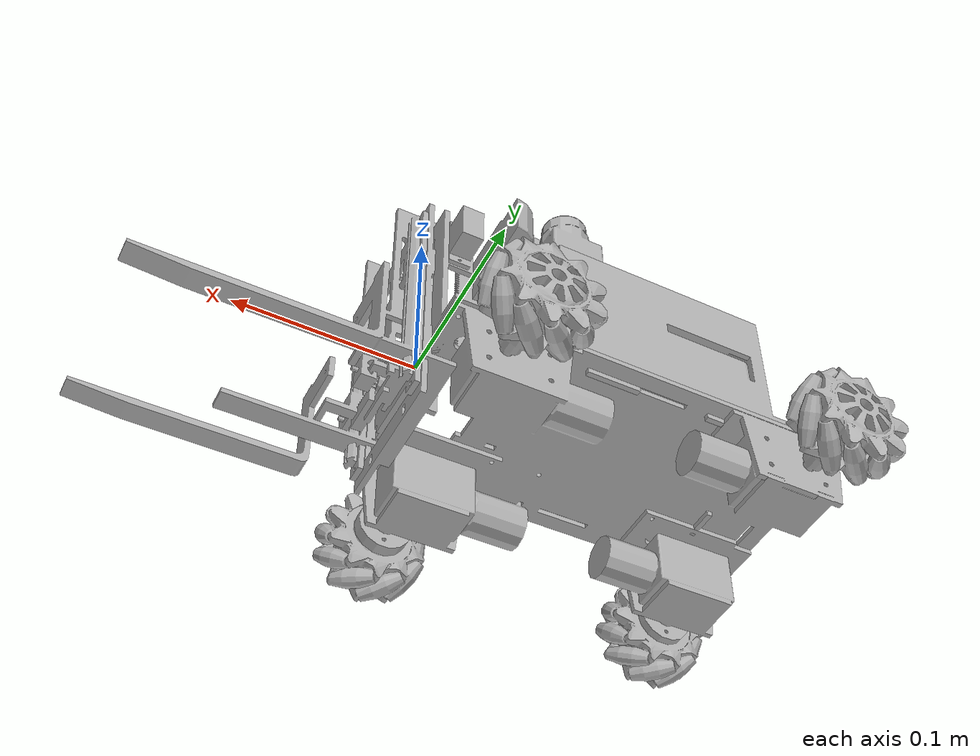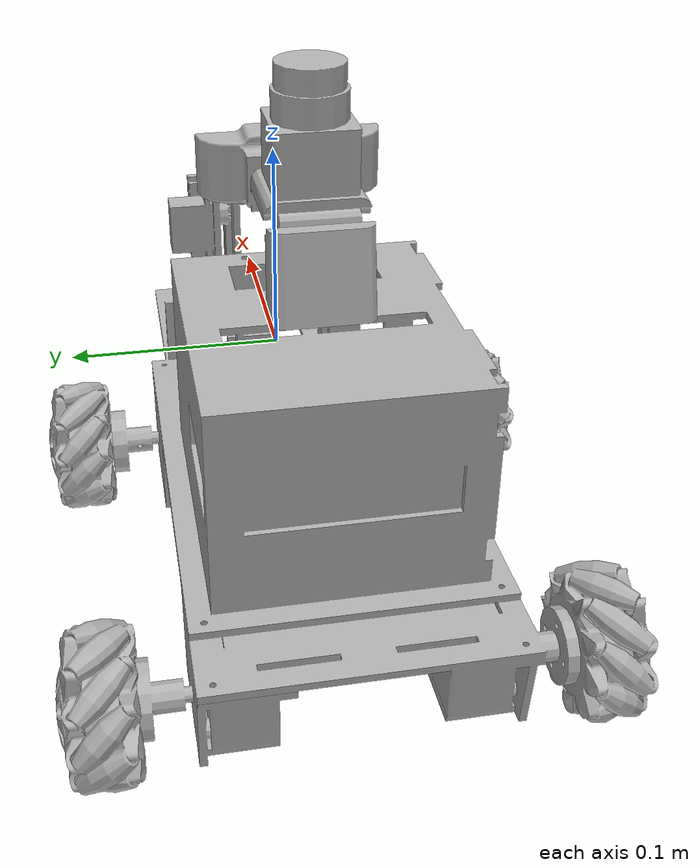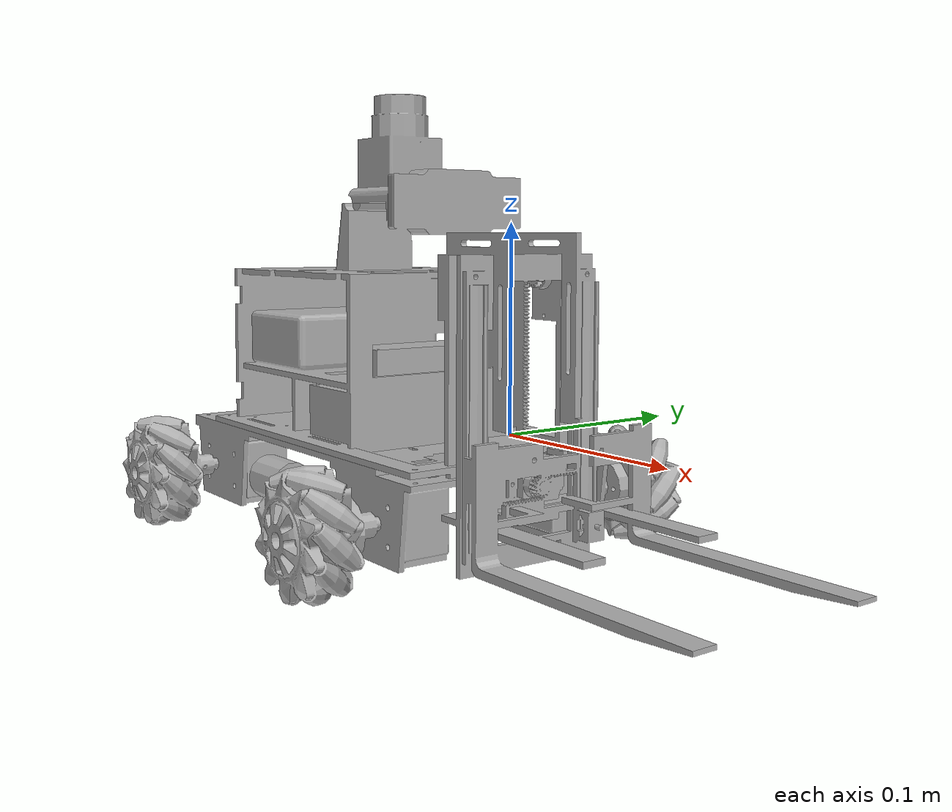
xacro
<?xml version="1.0" ?>
<robot name="omni" xmlns:xacro="http://www.ros.org/wiki/xacro">

<xacro:include filename="$(find omni_description)/urdf/materials.xacro" />
<xacro:include filename="$(find omni_description)/urdf/omni.trans" />
<xacro:include filename="$(find omni_description)/urdf/omni.gazebo" />

<link name="base_link">
  <inertial>
    <origin xyz="-0.09773323828228454 0.0007226627833107346 0.022411911514028184" rpy="0 0 0"/>
    <mass value="4.252201155500529"/>
    <inertia ixx="0.008087" iyy="0.02462" izz="0.024706" ixy="0.000186" iyz="-0.000351" ixz="0.003179"/>
  </inertial>
  <visual>
    <origin xyz="0 0 0" rpy="0 0 0"/>
    <geometry>
      <mesh filename="package://omni_description/meshes/base_link.stl"/>
    </geometry>
    <material name="silver"/>
  </visual>
  <collision>
    <origin xyz="0 0 0" rpy="0 0 0"/>
    <geometry>
      <mesh filename="package://omni_description/meshes/base_link.stl"/>
    </geometry>
  </collision>
</link>

<link name="hokuyo_1">
  <inertial>
    <origin xyz="2.336606508279715e-08 3.8184287998466193e-07 0.020883564035625468" rpy="0 0 0"/>
    <mass value="0.3480480361849981"/>
    <inertia ixx="8.4e-05" iyy="8.4e-05" izz="5.4e-05" ixy="0.0" iyz="0.0" ixz="-0.0"/>
  </inertial>
  <visual>
    <origin xyz="0.093332 7.5e-05 -0.119283" rpy="0 0 0"/>
    <geometry>
      <mesh filename="package://omni_description/meshes/hokuyo_1.stl"/>
    </geometry>
    <material name="silver"/>
  </visual>
  <collision>
    <origin xyz="0.093332 7.5e-05 -0.119283" rpy="0 0 0"/>
    <geometry>
      <mesh filename="package://omni_description/meshes/hokuyo_1.stl"/>
    </geometry>
  </collision>
</link>

<link name="camera_1">
  <inertial>
    <origin xyz="0.0447948568203564 3.841191200996773e-07 0.030958820986335858" rpy="0 0 0"/>
    <mass value="0.5924464749290492"/>
    <inertia ixx="0.000234" iyy="0.000644" izz="0.000711" ixy="-0.0" iyz="-0.0" ixz="-0.000116"/>
  </inertial>
  <visual>
    <origin xyz="0.120832 7.5e-05 -0.075283" rpy="0 0 0"/>
    <geometry>
      <mesh filename="package://omni_description/meshes/camera_1.stl"/>
    </geometry>
    <material name="silver"/>
  </visual>
  <collision>
    <origin xyz="0.120832 7.5e-05 -0.075283" rpy="0 0 0"/>
    <geometry>
      <mesh filename="package://omni_description/meshes/camera_1.stl"/>
    </geometry>
  </collision>
</link>

<link name="base_footprint_1">
  <inertial>
    <origin xyz="0.011015526351477817 -1.2132936514437287e-05 -0.02025971413965761" rpy="0 0 0"/>
    <mass value="2.8579441590973205"/>
    <inertia ixx="0.007001" iyy="0.015233" izz="0.021212" ixy="-6e-06" iyz="5e-06" ixz="0.00016"/>
  </inertial>
  <visual>
    <origin xyz="0.120832 7.5e-05 0.012717" rpy="0 0 0"/>
    <geometry>
      <mesh filename="package://omni_description/meshes/base_footprint_1.stl"/>
    </geometry>
    <material name="silver"/>
  </visual>
  <collision>
    <origin xyz="0.120832 7.5e-05 0.012717" rpy="0 0 0"/>
    <geometry>
      <mesh filename="package://omni_description/meshes/base_footprint_1.stl"/>
    </geometry>
  </collision>
</link>

<link name="front_r_wheel_1">
  <inertial>
    <origin xyz="-0.0002458235682244632 -0.01366320983047506 0.0007562614815726718" rpy="0 0 0"/>
    <mass value="0.35644460676611167"/>
    <inertia ixx="8.9e-05" iyy="0.000135" izz="8.3e-05" ixy="-0.0" iyz="-0.0" ixz="2e-06"/>
  </inertial>
  <visual>
    <origin xyz="0.019989 0.084575 0.037717" rpy="0 0 0"/>
    <geometry>
      <mesh filename="package://omni_description/meshes/front_r_wheel_1.stl"/>
    </geometry>
    <material name="silver"/>
  </visual>
  <collision>
    <origin xyz="0.019989 0.084575 0.037717" rpy="0 0 0"/>
    <geometry>
      <mesh filename="package://omni_description/meshes/front_r_wheel_1.stl"/>
    </geometry>
  </collision>
</link>

<link name="front_l_wheel_1">
  <inertial>
    <origin xyz="-0.00024582318146064083 0.013663923828028529 0.0007562586384524256" rpy="0 0 0"/>
    <mass value="0.35644606430630343"/>
    <inertia ixx="8.9e-05" iyy="0.000135" izz="8.3e-05" ixy="0.0" iyz="0.0" ixz="2e-06"/>
  </inertial>
  <visual>
    <origin xyz="0.019989 -0.084425 0.037717" rpy="0 0 0"/>
    <geometry>
      <mesh filename="package://omni_description/meshes/front_l_wheel_1.stl"/>
    </geometry>
    <material name="silver"/>
  </visual>
  <collision>
    <origin xyz="0.019989 -0.084425 0.037717" rpy="0 0 0"/>
    <geometry>
      <mesh filename="package://omni_description/meshes/front_l_wheel_1.stl"/>
    </geometry>
  </collision>
</link>

<link name="back_l_wheel_1">
  <inertial>
    <origin xyz="0.0007562654193716267 0.017563160142214207 0.000245765096680943" rpy="0 0 0"/>
    <mass value="0.3564460643063053"/>
    <inertia ixx="8.3e-05" iyy="0.000135" izz="8.9e-05" ixy="0.0" iyz="-0.0" ixz="-2e-06"/>
  </inertial>
  <visual>
    <origin xyz="0.193332 -0.076975 0.037717" rpy="0 0 0"/>
    <geometry>
      <mesh filename="package://omni_description/meshes/back_l_wheel_1.stl"/>
    </geometry>
    <material name="silver"/>
  </visual>
  <collision>
    <origin xyz="0.193332 -0.076975 0.037717" rpy="0 0 0"/>
    <geometry>
      <mesh filename="package://omni_description/meshes/back_l_wheel_1.stl"/>
    </geometry>
  </collision>
</link>

<link name="back_r_wheel_1">
  <inertial>
    <origin xyz="0.0007562682625465444 -0.0175632098305587 0.0002457654835497994" rpy="0 0 0"/>
    <mass value="0.35644460676611395"/>
    <inertia ixx="8.3e-05" iyy="0.000135" izz="8.9e-05" ixy="-0.0" iyz="0.0" ixz="-2e-06"/>
  </inertial>
  <visual>
    <origin xyz="0.193332 0.077575 0.037717" rpy="0 0 0"/>
    <geometry>
      <mesh filename="package://omni_description/meshes/back_r_wheel_1.stl"/>
    </geometry>
    <material name="silver"/>
  </visual>
  <collision>
    <origin xyz="0.193332 0.077575 0.037717" rpy="0 0 0"/>
    <geometry>
      <mesh filename="package://omni_description/meshes/back_r_wheel_1.stl"/>
    </geometry>
  </collision>
</link>

<joint name="hokuyo_j" type="fixed">
  <origin xyz="0.0275 0.0 0.044" rpy="0 0 0"/>
  <parent link="camera_1"/>
  <child link="hokuyo_1"/>
</joint>

<joint name="camera_j" type="fixed">
  <origin xyz="-0.120832 -7.5e-05 0.075283" rpy="0 0 0"/>
  <parent link="base_link"/>
  <child link="camera_1"/>
</joint>

<joint name="Rigid 17" type="fixed">
  <origin xyz="-0.120832 -7.5e-05 -0.012717" rpy="0 0 0"/>
  <parent link="base_link"/>
  <child link="base_footprint_1"/>
</joint>

<joint name="front_r_wheel_j" type="continuous">
  <origin xyz="0.100843 -0.0845 -0.025" rpy="0 0 0"/>
  <parent link="base_footprint_1"/>
  <child link="front_r_wheel_1"/>
  <axis xyz="-0.0 1.0 0.0"/>
</joint>

<joint name="front_l_wheel_j" type="continuous">
  <origin xyz="0.100843 0.0845 -0.025" rpy="0 0 0"/>
  <parent link="base_footprint_1"/>
  <child link="front_l_wheel_1"/>
  <axis xyz="-0.0 1.0 0.0"/>
</joint>

<joint name="back_l_wheel_j" type="continuous">
  <origin xyz="-0.0725 0.07705 -0.025" rpy="0 0 0"/>
  <parent link="base_footprint_1"/>
  <child link="back_l_wheel_1"/>
  <axis xyz="0.0 1.0 -0.0"/>
</joint>

<joint name="back_r_wheel_j" type="continuous">
  <origin xyz="-0.0725 -0.0775 -0.025" rpy="0 0 0"/>
  <parent link="base_footprint_1"/>
  <child link="back_r_wheel_1"/>
  <axis xyz="-0.0 1.0 0.0"/>
</joint>

<!-- hokuyo -->
<gazebo reference="hokuyo_1">
  <sensor type="gpu_ray" name="head_hokuyo_sensor">
    <pose>0 0 0 0 0 0</pose>
    <visualize>false</visualize>
    <update_rate>40</update_rate>
    <ray>
      <scan>
        <horizontal>
          <samples>720</samples>
          <resolution>1</resolution>
          <min_angle>-1.570796</min_angle>
          <max_angle>1.570796</max_angle>
        </horizontal>
      </scan>
      <range>
        <min>0.10</min>
        <max>30.0</max>
        <resolution>0.01</resolution>
      </range>
      <noise>
        <type>gaussian</type>
        <mean>0.0</mean>
        <stddev>0.01</stddev>
      </noise>
    </ray>
    <plugin name="gazebo_ros_head_hokuyo_controller" filename="libgazebo_ros_gpu_laser.so">
      <topicName>/laser/scan</topicName>
      <frameName>hokuyo_link</frameName>
    </plugin>
  </sensor>
</gazebo>

<gazebo>
  <plugin name="object_controller" filename="libgazebo_ros_planar_move.so">
    <commandTopic>cmd_vel</commandTopic>
    <odometryTopic>odom</odometryTopic>
    <odometryFrame>odom</odometryFrame>
    <odometryRate>20.0</odometryRate>
    <robotBaseFrame>base_footprint</robotBaseFrame>
  </plugin>
</gazebo>

</robot>

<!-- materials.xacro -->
<robot name="omni" xmlns:xacro="http://www.ros.org/wiki/xacro" >

<material name="silver">
  <color rgba="0.700 0.700 0.700 1.000"/>
</material>

</robot>

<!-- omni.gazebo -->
<robot name="omni" xmlns:xacro="http://www.ros.org/wiki/xacro" >

<xacro:property name="body_color" value="Gazebo/Silver" />

<gazebo>
  <plugin name="control" filename="libgazebo_ros_control.so"/>
</gazebo>

<gazebo reference="base_link">
  <material>${body_color}</material>
  <mu1>0.2</mu1>
  <mu2>0.2</mu2>
  <selfCollide>true</selfCollide>
  <gravity>true</gravity>
</gazebo>

<gazebo reference="hokuyo_1">
  <material>${body_color}</material>
  <mu1>0.2</mu1>
  <mu2>0.2</mu2>
  <selfCollide>true</selfCollide>
</gazebo>

<gazebo reference="camera_1">
  <material>${body_color}</material>
  <mu1>0.2</mu1>
  <mu2>0.2</mu2>
  <selfCollide>true</selfCollide>
</gazebo>

<gazebo reference="base_footprint_1">
  <material>${body_color}</material>
  <mu1>0.2</mu1>
  <mu2>0.2</mu2>
  <selfCollide>true</selfCollide>
</gazebo>

<gazebo reference="front_r_wheel_1">
  <material>${body_color}</material>
  <mu1>0.2</mu1>
  <mu2>0.2</mu2>
  <selfCollide>true</selfCollide>
</gazebo>

<gazebo reference="front_l_wheel_1">
  <material>${body_color}</material>
  <mu1>0.2</mu1>
  <mu2>0.2</mu2>
  <selfCollide>true</selfCollide>
</gazebo>

<gazebo reference="back_l_wheel_1">
  <material>${body_color}</material>
  <mu1>0.2</mu1>
  <mu2>0.2</mu2>
  <selfCollide>true</selfCollide>
</gazebo>

<gazebo reference="back_r_wheel_1">
  <material>${body_color}</material>
  <mu1>0.2</mu1>
  <mu2>0.2</mu2>
  <selfCollide>true</selfCollide>
</gazebo>

</robot>
